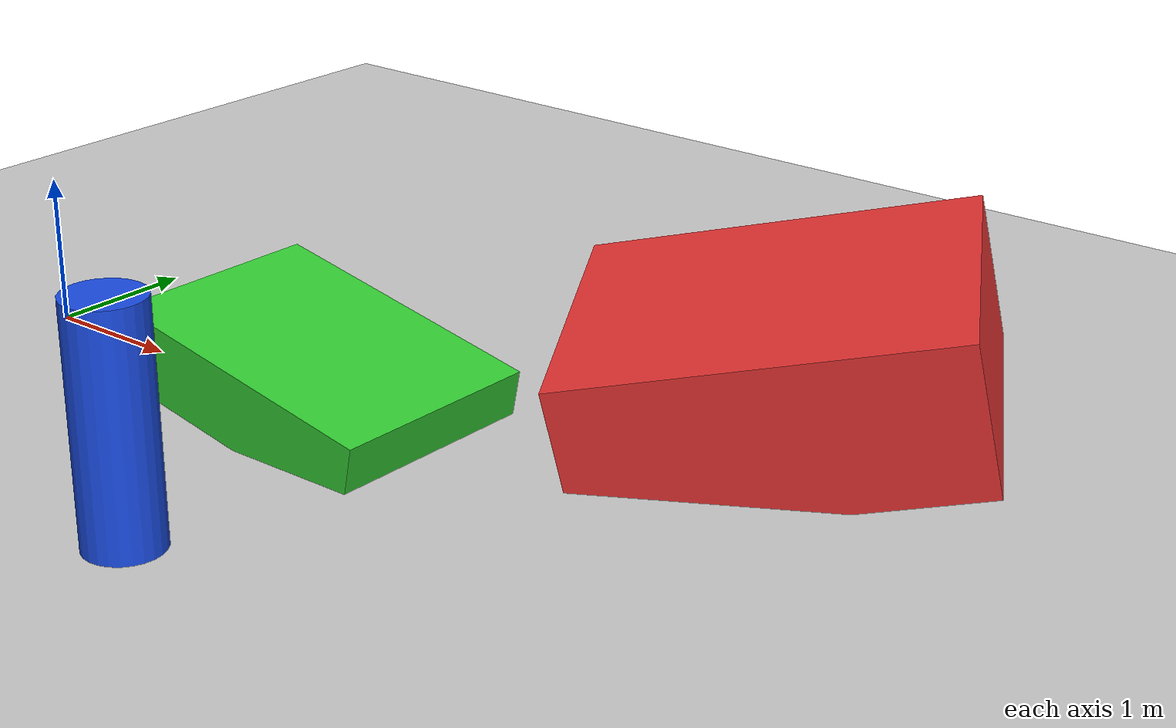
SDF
<?xml version="1.0" ?>
<sdf version="1.6">
  <world name="terrain_world">
    <!-- Directional Sun Light -->
    <include>
      <uri>model://sun</uri>
    </include>

    <!-- Ground Plane -->
    <include>
      <uri>model://ground_plane</uri>
    </include>

    <!-- Obstacle Ramp 1 (Green Box Bumper Ramp) -->
    <model name="ramp_1">
      <static>true</static>
      <pose>2.5 0 0.25 0 0.2 0</pose>
      <link name="link">
        <collision name="collision">
          <geometry><box><size>2.0 1.5 0.5</size></box></geometry>
        </collision>
        <visual name="visual">
          <geometry><box><size>2.0 1.5 0.5</size></box></geometry>
          <material>
            <ambient>0.2 0.8 0.2 1</ambient>
            <diffuse>0.2 0.8 0.2 1</diffuse>
          </material>
        </visual>
      </link>
    </model>

    <!-- Obstacle Ramp 2 (Red Box Slope) -->
    <model name="ramp_2">
      <static>true</static>
      <pose>5.0 1.5 0.5 0.1 -0.2 0.5</pose>
      <link name="link">
        <collision name="collision">
          <geometry><box><size>2.5 2.0 1.0</size></box></geometry>
        </collision>
        <visual name="visual">
          <geometry><box><size>2.5 2.0 1.0</size></box></geometry>
          <material>
            <ambient>0.9 0.2 0.2 1</ambient>
            <diffuse>0.9 0.2 0.2 1</diffuse>
          </material>
        </visual>
      </link>
    </model>

    <!-- Camera Vision Test Pillars -->
    <model name="pillar_blue">
      <static>true</static>
      <pose>3.0 -2.0 0.75 0 0 0</pose>
      <link name="link">
        <collision name="collision">
          <geometry><cylinder><radius>0.25</radius><length>1.5</length></cylinder></geometry>
        </collision>
        <visual name="visual">
          <geometry><cylinder><radius>0.25</radius><length>1.5</length></cylinder></geometry>
          <material>
            <ambient>0.1 0.3 0.9 1</ambient>
            <diffuse>0.1 0.3 0.9 1</diffuse>
          </material>
        </visual>
      </link>
    </model>

    <!-- Physics settings -->
    <physics type="ode">
      <max_step_size>0.001</max_step_size>
      <real_time_factor>1.0</real_time_factor>
      <real_time_update_rate>1000</real_time_update_rate>
    </physics>

    <scene>
      <ambient>0.5 0.5 0.5 1.0</ambient>
      <background>0.7 0.8 0.9 1.0</background>
      <shadows>true</shadows>
    </scene>
  </world>
</sdf>
